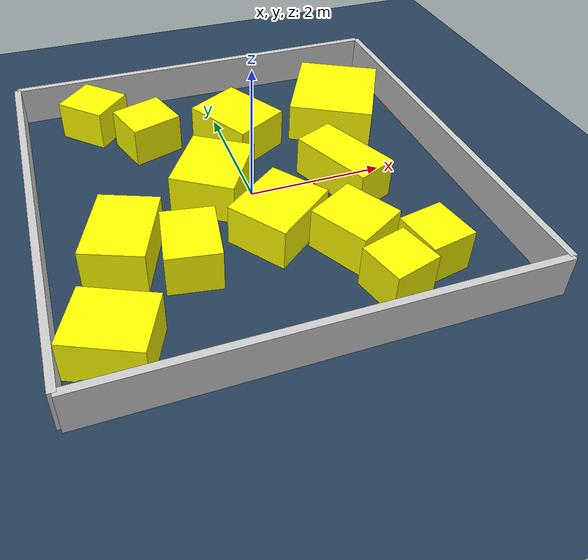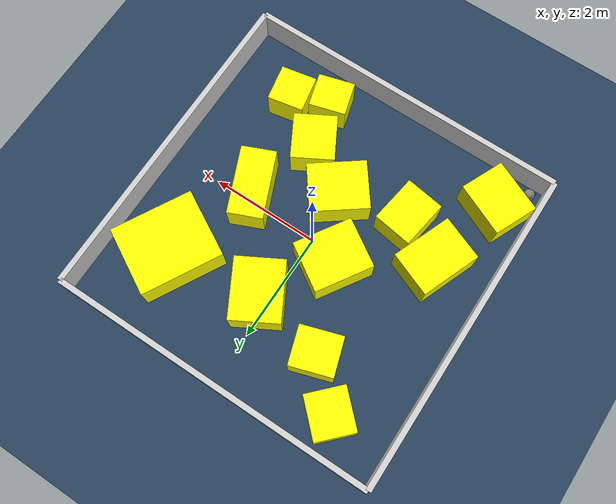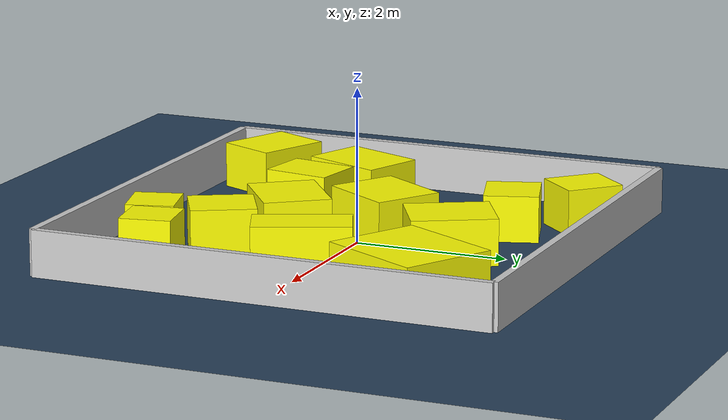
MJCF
<?xml version="1.0" ?>
<mujoco model="generated_environment">
  <option timestep="0.01" integrator="RK4" cone="elliptic"/>
  <default>
    <geom density="1"/>
  </default>
  <asset>
    <texture builtin="gradient" height="3072" rgb1="0.3 0.5 0.7" rgb2="0 0 0" type="skybox" width="512"/>
    <texture builtin="checker" height="300" mark="edge" markrgb="0.8 0.8 0.8" name="groundplane" rgb1="0.2 0.3 0.4" rgb2="0.1 0.2 0.3" type="2d" width="300"/>
    <material name="groundplane" reflectance="0.2" texrepeat="5 5" texture="groundplane" texuniform="true"/>
    <material name="robot" rgba="1.0 1.0 0.0 1.0"/>
  </asset>
  <worldbody>
    <light dir="0 0 -1" directional="true" pos="0 0 1.5"/>
    <geom condim="4" friction="0.5 0.005 0.001" material="groundplane" name="floor" size="0 0 0.05" type="plane"/>
    <body name="walls">
      <geom name="wall_1" condim="4" pos="-3.0 0.0 0.3" rgba="0.800000011920929 0.800000011920929 0.800000011920929 1.0" size="0.05 3.0 0.3" type="box"/>
      <geom name="wall_2" condim="4" pos="3.0 0.0 0.3" rgba="0.800000011920929 0.800000011920929 0.800000011920929 1.0" size="0.05 3.0 0.3" type="box"/>
      <geom name="wall_3" condim="4" pos="0.0 -3.0 0.3" rgba="0.800000011920929 0.800000011920929 0.800000011920929 1.0" size="3.0 0.05 0.3" type="box"/>
      <geom name="wall_4" condim="4" pos="0.0 3.0 0.3" rgba="0.800000011920929 0.800000011920929 0.800000011920929 1.0" size="3.0 0.05 0.3" type="box"/>
    </body>
    <body name="robot">
      <joint name="joint_x" type="slide" pos="0 0 0" axis="1 0 0"/>
      <joint name="joint_y" type="slide" pos="0 0 0" axis="0 1 0"/>
      <geom name="robot" type="sphere" pos="-2.75 -2.75 0.2" size="0.1 0.0 0.0" mass="5.0" friction="1.0 0.005 0.001" condim="4" rgba="0.5 0.5 0.5 1.0"/>
    </body>
    <body name="obstacle_1_movable">
      <geom name="obstacle_1_movable" condim="4" pos="1.9241129249307836 1.5079190475318227 0.3" euler="0 0 331.1787565842324" friction="0.0 0.005 0.001" rgba="1 1 0 1" size="0.6350336595127257 0.7460377560231821 0.3" type="box" mass="0.1"/>
      <joint type="free"/>
    </body>
    <body name="obstacle_2_movable">
      <geom name="obstacle_2_movable" condim="4" pos="0.9172998783530604 -1.4534299325057836 0.3" euler="0 0 29.138312237223317" friction="0.0 0.005 0.001" rgba="1 1 0 1" size="0.38850388927355173 0.4195196912704507 0.3" type="box" mass="0.1"/>
      <joint type="free"/>
    </body>
    <body name="obstacle_3_movable">
      <geom name="obstacle_3_movable" condim="4" pos="-0.5231535050244287 0.15542937722756767 0.3" euler="0 0 57.393977029480695" friction="0.0 0.005 0.001" rgba="1 1 0 1" size="0.5378815516781041 0.4614791503854861 0.3" type="box" mass="0.1"/>
      <joint type="free"/>
    </body>
    <body name="obstacle_4_movable">
      <geom name="obstacle_4_movable" condim="4" pos="0.1967738705301283 1.3392109586137573 0.3" euler="0 0 119.03844276716664" friction="0.0 0.005 0.001" rgba="1 1 0 1" size="0.546484141962699 0.44476812359742984 0.3" type="box" mass="0.1"/>
      <joint type="free"/>
    </body>
    <body name="obstacle_5_movable">
      <geom name="obstacle_5_movable" condim="4" pos="-1.1667019546341173 1.6484125427578702 0.3" euler="0 0 197.81550554364043" friction="0.0 0.005 0.001" rgba="1 1 0 1" size="0.3878590172843603 0.35272908159661426 0.3" type="box" mass="0.1"/>
      <joint type="free"/>
    </body>
    <body name="obstacle_6_movable">
      <geom name="obstacle_6_movable" condim="4" pos="-1.179289514851572 -1.1812697311426126 0.3" euler="0 0 81.2988196371999" friction="0.0 0.005 0.001" rgba="1 1 0 1" size="0.4423555445060999 0.35723879451037654 0.3" type="box" mass="0.1"/>
      <joint type="free"/>
    </body>
    <body name="obstacle_7_movable">
      <geom name="obstacle_7_movable" condim="4" pos="-1.8836005306473784 2.347453989605886 0.3" euler="0 0 316.10418983298706" friction="0.0 0.005 0.001" rgba="1 1 0 1" size="0.3841123611682429 0.3573316977589535 0.3" type="box" mass="0.1"/>
      <joint type="free"/>
    </body>
    <body name="obstacle_8_movable">
      <geom name="obstacle_8_movable" condim="4" pos="1.7557411505525122 -2.01729788596071 0.3" euler="0 0 100.71530021900479" friction="0.0 0.005 0.001" rgba="1 1 0 1" size="0.33258661027719566 0.3282695687993689 0.3" type="box" mass="0.1"/>
      <joint type="free"/>
    </body>
    <body name="obstacle_9_movable">
      <geom name="obstacle_9_movable" condim="4" pos="-1.9668651799820567 -0.7684048413952447 0.3" euler="0 0 248.2868292615217" friction="0.0 0.005 0.001" rgba="1 1 0 1" size="0.5596537242991162 0.41598251268462005 0.3" type="box" mass="0.1"/>
      <joint type="free"/>
    </body>
    <body name="obstacle_10_movable">
      <geom name="obstacle_10_movable" condim="4" pos="1.3425465449315594 -0.16435992969432522 0.3" euler="0 0 23.051646079933086" friction="0.0 0.005 0.001" rgba="1 1 0 1" size="0.31678388195280766 0.6257577433116639 0.3" type="box" mass="0.1"/>
      <joint type="free"/>
    </body>
    <body name="obstacle_11_movable">
      <geom name="obstacle_11_movable" condim="4" pos="0.0689491486113818 -0.9151639566544083 0.3" euler="0 0 216.7239811917168" friction="0.0 0.005 0.001" rgba="1 1 0 1" size="0.524831784146917 0.4400071117473733 0.3" type="box" mass="0.1"/>
      <joint type="free"/>
    </body>
    <body name="obstacle_12_movable">
      <geom name="obstacle_12_movable" condim="4" pos="-2.328700019758961 -2.2385590487974314 0.3" euler="0 0 65.83092549034413" friction="0.0 0.005 0.001" rgba="1 1 0 1" size="0.41156528706728696 0.4949641885771942 0.3" type="box" mass="0.1"/>
      <joint type="free"/>
    </body>
    <body name="obstacle_13_movable">
      <geom name="obstacle_13_movable" condim="4" pos="1.1006379268017956 -2.309164885440076 0.3" euler="0 0 15.72222957520137" friction="0.0 0.005 0.001" rgba="1 1 0 1" size="0.3334857024099676 0.31163158797324775 0.3" type="box" mass="0.1"/>
      <joint type="free"/>
    </body>
  </worldbody>
  <actuator>
    <motor name="actuator_x" joint="joint_x" gear="1" ctrlrange="-1 1"/>
    <motor name="actuator_y" joint="joint_y" gear="1" ctrlrange="-1 1"/>
  </actuator>
</mujoco>
